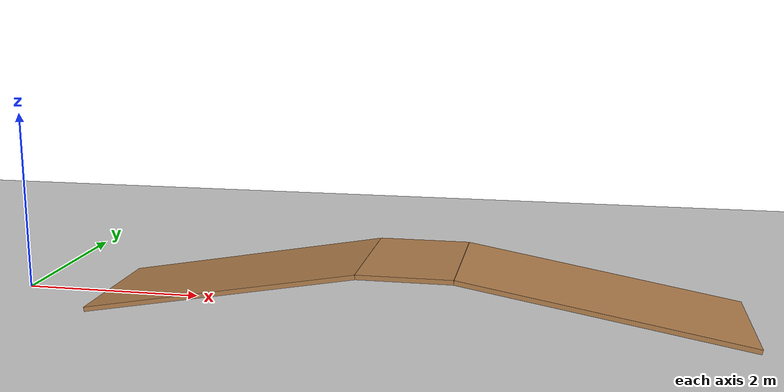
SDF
<?xml version="1.0" ?>
<!-- 由 omni_world.py 自动生成: scene=slope seed=None -->
<sdf version="1.5">
  <world name="slope">
    <physics type="ode">
      <type>world</type>
      <max_step_size>0.001</max_step_size>
      <real_time_update_rate>1000</real_time_update_rate>
      <iters>500</iters>
    </physics>
    <include><uri>model://sun</uri></include>
    <include><uri>model://ground_plane</uri></include>
    <model name="ramp_up">
      <static>true</static>
      <pose>2.477 0.000 0.285 0.0000 -0.1745 0.0000</pose>
      <link name="link">
        <collision name="collision">
          <geometry><box><size>3.000 1.500 0.050</size></box></geometry>
          <surface><friction><ode><mu>1.2</mu><mu2>1.2</mu2></ode></friction></surface>
        </collision>
        <visual name="visual">
          <geometry><box><size>3.000 1.500 0.050</size></box></geometry>
          <material><script><uri>file://media/materials/scripts/gazebo.material</uri>
            <name>Gazebo/Wood</name></script></material>
        </visual>
      </link>
    </model>
    <model name="platform">
      <static>true</static>
      <pose>4.454 0.000 0.546 0.0000 0.0000 0.0000</pose>
      <link name="link">
        <collision name="collision">
          <geometry><box><size>1.000 1.500 0.050</size></box></geometry>
          <surface><friction><ode><mu>1.2</mu><mu2>1.2</mu2></ode></friction></surface>
        </collision>
        <visual name="visual">
          <geometry><box><size>1.000 1.500 0.050</size></box></geometry>
          <material><script><uri>file://media/materials/scripts/gazebo.material</uri>
            <name>Gazebo/Wood</name></script></material>
        </visual>
      </link>
    </model>
    <model name="ramp_down">
      <static>true</static>
      <pose>6.432 0.000 0.285 0.0000 0.1745 0.0000</pose>
      <link name="link">
        <collision name="collision">
          <geometry><box><size>3.000 1.500 0.050</size></box></geometry>
          <surface><friction><ode><mu>1.2</mu><mu2>1.2</mu2></ode></friction></surface>
        </collision>
        <visual name="visual">
          <geometry><box><size>3.000 1.500 0.050</size></box></geometry>
          <material><script><uri>file://media/materials/scripts/gazebo.material</uri>
            <name>Gazebo/Wood</name></script></material>
        </visual>
      </link>
    </model>

  </world>
</sdf>
